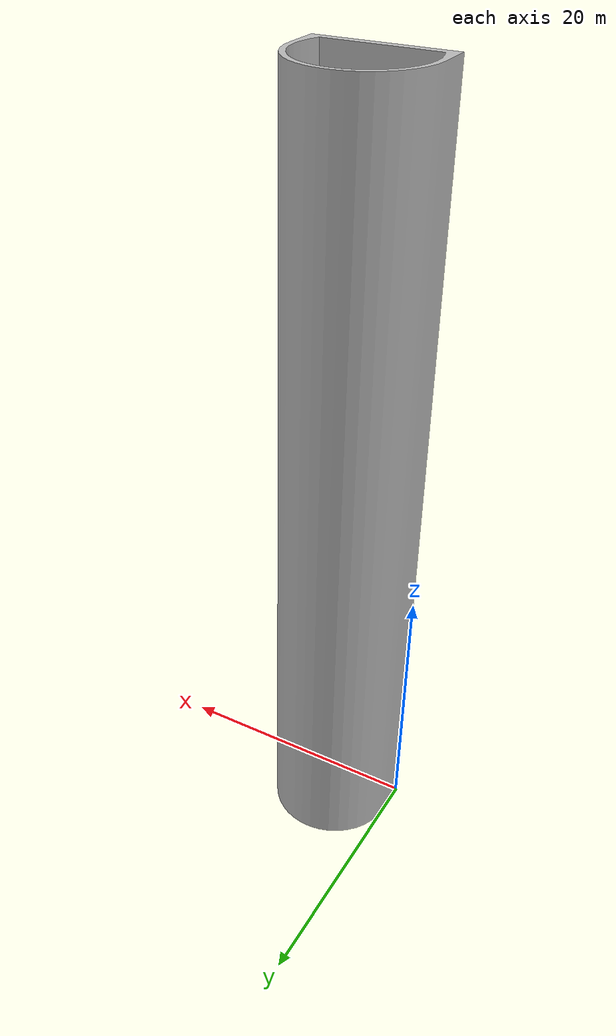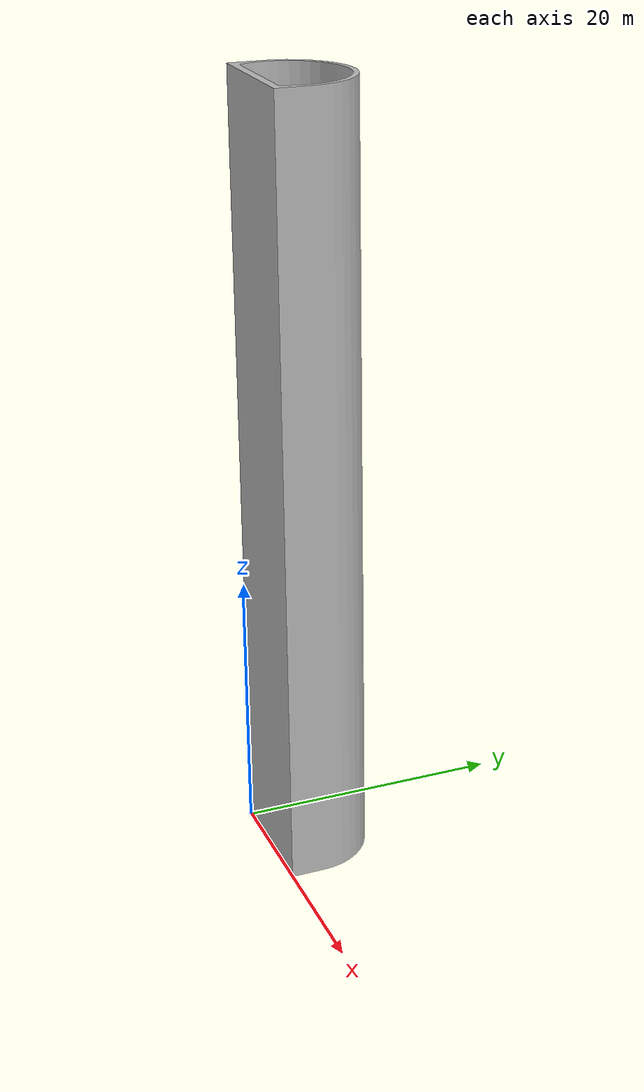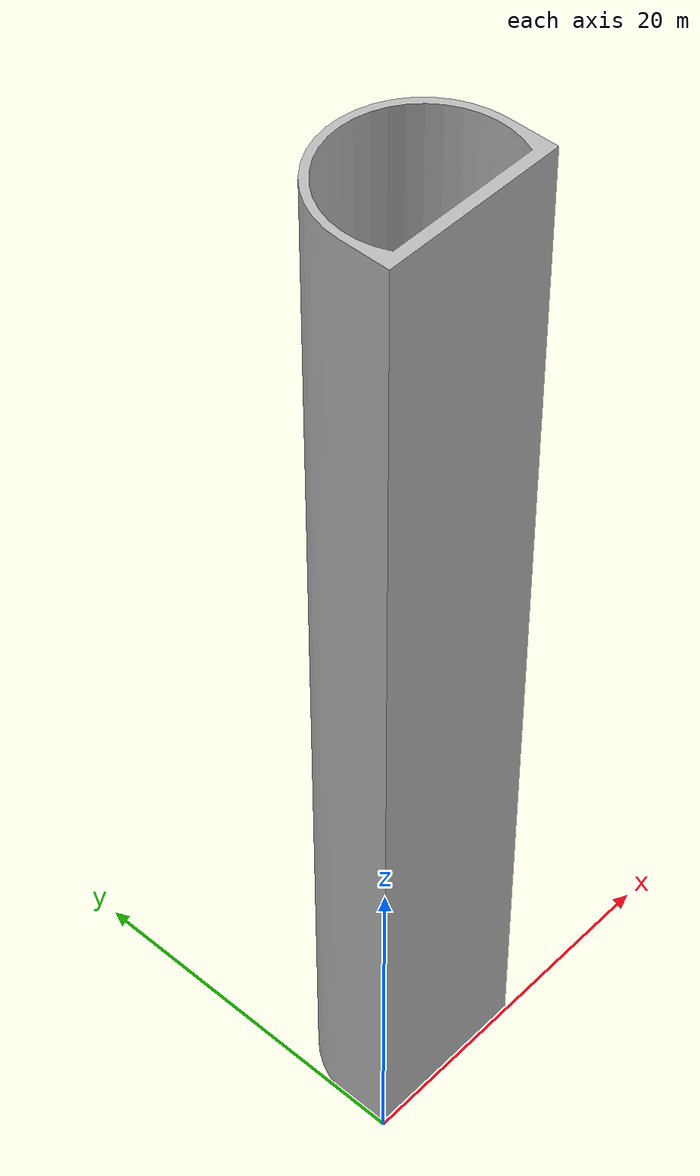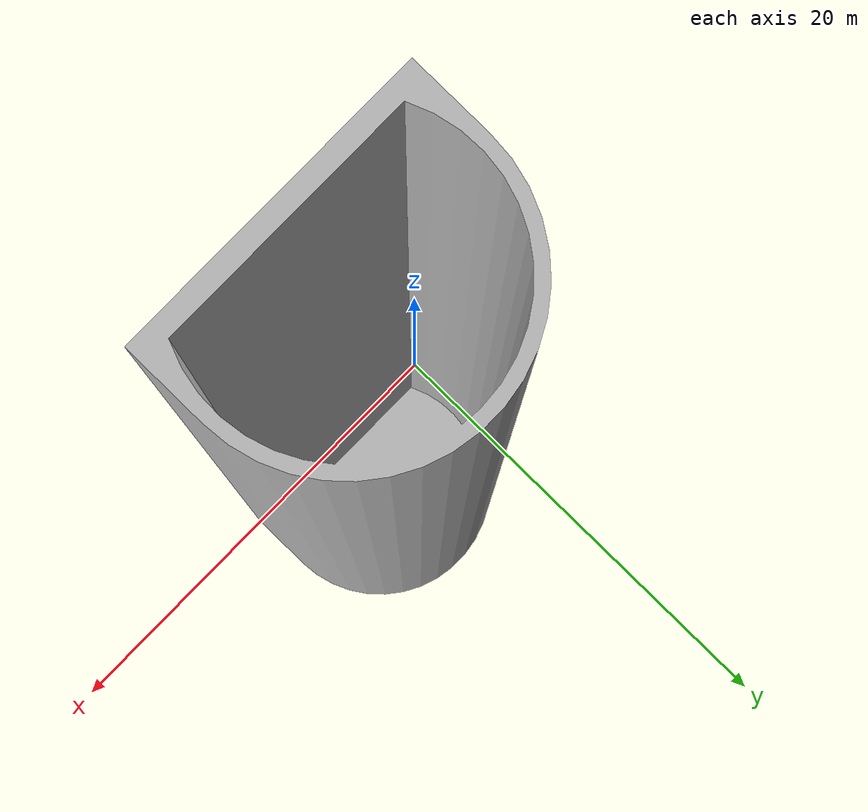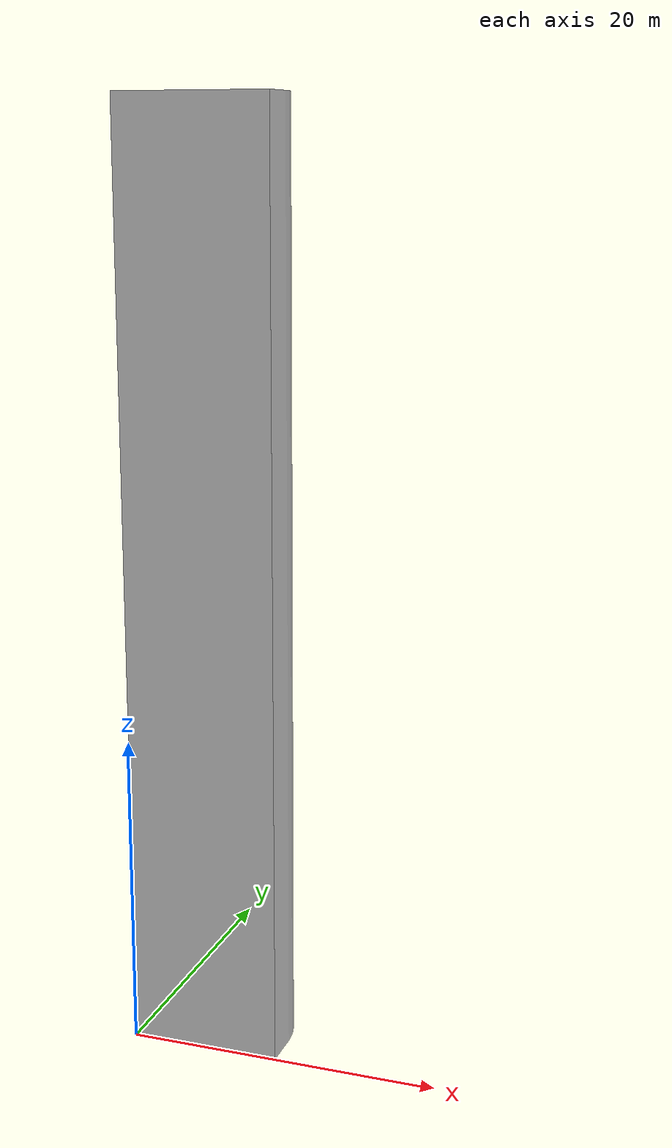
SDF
<?xml version="1.0" ?>
<sdf version="1.5">
  <model name="tunnel_exp">
    <static>true</static>
    <link name="tunnel_link">
      <collision name="collision">
        <geometry>
          <mesh>
          <scale>0.001 0.001 0.001</scale>
            <uri>model://tunnel_exp/tunnel_experiment_58m.STL</uri>
          </mesh>
        </geometry>
      </collision>
      <visual name="visual">
        <geometry>
          <mesh>
          <scale>0.001 0.001 0.001</scale>
            <uri>model://tunnel_exp/tunnel_experiment_58m.STL</uri>
          </mesh>
        </geometry>
      </visual>
    </link>
  </model>
</sdf>
